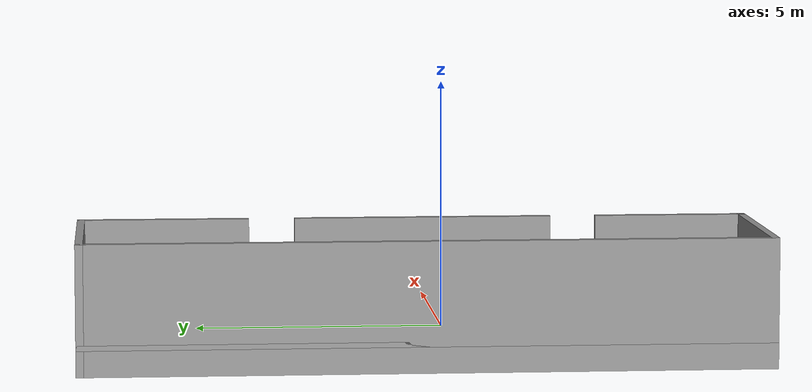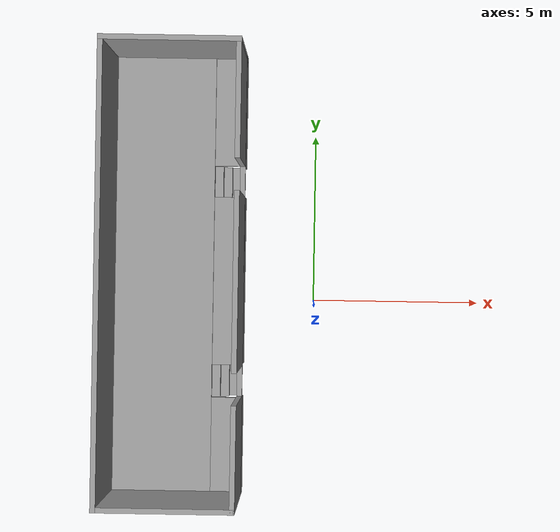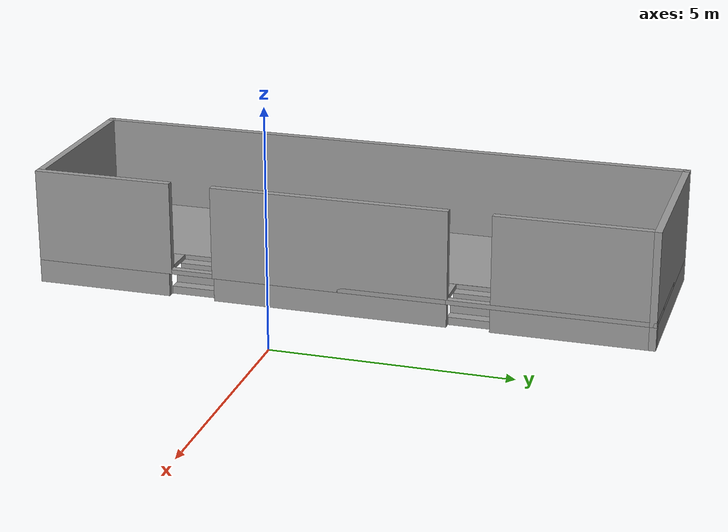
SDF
<?xml version='1.0'?>
<sdf version='1.7'>
  <model name='lab_floor2'>
    <pose>-3.0495 0.737 0 0 -0 0</pose>
    <link name='Floor_0'>
      <pose>-1.0495 0 0.5 0 -0 0</pose>
      <visual name='Floor_0_Visual_0'>
        <pose>-0.455185 0 0.05 0 -0 0</pose>
        <geometry>
          <box>
            <size>3.08963 13.25 0.1</size>
          </box>
        </geometry>
        <material>
          <script>
            <uri>file://media/materials/scripts/gazebo.material</uri>
            <name>Gazebo/Grey</name>
          </script>
          <ambient>1 1 1 1</ambient>
        </material>
        <meta>
          <layer>1</layer>
        </meta>
      </visual>
      <collision name='Floor_0_Collision_0'>
        <geometry>
          <box>
            <size>3.08963 13.25 0.1</size>
          </box>
        </geometry>
        <pose>-0.455185 0 0.05 0 -0 0</pose>
      </collision>
      <visual name='Floor_0_Visual_1'>
        <pose>1.54482 -5.14251 0.05 0 -0 0</pose>
        <geometry>
          <box>
            <size>0.91037 2.96497 0.1</size>
          </box>
        </geometry>
        <material>
          <script>
            <uri>file://media/materials/scripts/gazebo.material</uri>
            <name>Gazebo/Grey</name>
          </script>
          <ambient>1 1 1 1</ambient>
        </material>
        <meta>
          <layer>1</layer>
        </meta>
      </visual>
      <collision name='Floor_0_Collision_1'>
        <geometry>
          <box>
            <size>0.91037 2.96497 0.1</size>
          </box>
        </geometry>
        <pose>1.54482 -5.14251 0.05 0 -0 0</pose>
      </collision>
      <visual name='Floor_0_Visual_2'>
        <pose>1.92021 -0.663526 0.05 0 -0 0</pose>
        <geometry>
          <box>
            <size>0.15958 5.993 0.1</size>
          </box>
        </geometry>
        <material>
          <script>
            <uri>file://media/materials/scripts/gazebo.material</uri>
            <name>Gazebo/Grey</name>
          </script>
          <ambient>1 1 1 1</ambient>
        </material>
        <meta>
          <layer>1</layer>
        </meta>
      </visual>
      <collision name='Floor_0_Collision_2'>
        <geometry>
          <box>
            <size>0.15958 5.993 0.1</size>
          </box>
        </geometry>
        <pose>1.92021 -0.663526 0.05 0 -0 0</pose>
      </collision>
      <visual name='Floor_0_Visual_3'>
        <pose>1.09197 1.97253 0.05 0 -0 0</pose>
        <geometry>
          <box>
            <size>0.004688 9.30495 0.1</size>
          </box>
        </geometry>
        <material>
          <script>
            <uri>file://media/materials/scripts/gazebo.material</uri>
            <name>Gazebo/Grey</name>
          </script>
          <ambient>1 1 1 1</ambient>
        </material>
        <meta>
          <layer>1</layer>
        </meta>
      </visual>
      <collision name='Floor_0_Collision_3'>
        <geometry>
          <box>
            <size>0.004688 9.30495 0.1</size>
          </box>
        </geometry>
        <pose>1.09197 1.97253 0.05 0 -0 0</pose>
      </collision>
      <visual name='Floor_0_Visual_4'>
        <pose>1.46737 -0.173488 0.05 0 -0 0</pose>
        <geometry>
          <box>
            <size>0.746103 5.01292 0.1</size>
          </box>
        </geometry>
        <material>
          <script>
            <uri>file://media/materials/scripts/gazebo.material</uri>
            <name>Gazebo/Grey</name>
          </script>
          <ambient>1 1 1 1</ambient>
        </material>
        <meta>
          <layer>1</layer>
        </meta>
      </visual>
      <collision name='Floor_0_Collision_4'>
        <geometry>
          <box>
            <size>0.746103 5.01292 0.1</size>
          </box>
        </geometry>
        <pose>1.46737 -0.173488 0.05 0 -0 0</pose>
      </collision>
      <visual name='Floor_0_Visual_5'>
        <pose>1.92216 4.47899 0.05 0 -0 0</pose>
        <geometry>
          <box>
            <size>0.155682 4.29203 0.1</size>
          </box>
        </geometry>
        <material>
          <script>
            <uri>file://media/materials/scripts/gazebo.material</uri>
            <name>Gazebo/Grey</name>
          </script>
          <ambient>1 1 1 1</ambient>
        </material>
        <meta>
          <layer>1</layer>
        </meta>
      </visual>
      <collision name='Floor_0_Collision_5'>
        <geometry>
          <box>
            <size>0.155682 4.29203 0.1</size>
          </box>
        </geometry>
        <pose>1.92216 4.47899 0.05 0 -0 0</pose>
      </collision>
      <visual name='Floor_0_Visual_6'>
        <pose>1.46737 4.9448 0.05 0 -0 0</pose>
        <geometry>
          <box>
            <size>0.746103 3.3604 0.1</size>
          </box>
        </geometry>
        <material>
          <script>
            <uri>file://media/materials/scripts/gazebo.material</uri>
            <name>Gazebo/Grey</name>
          </script>
          <ambient>1 1 1 1</ambient>
        </material>
        <meta>
          <layer>1</layer>
        </meta>
      </visual>
      <collision name='Floor_0_Collision_6'>
        <geometry>
          <box>
            <size>0.746103 3.3604 0.1</size>
          </box>
        </geometry>
        <pose>1.46737 4.9448 0.05 0 -0 0</pose>
      </collision>
    </link>
    <link name='Stairs_1'>
      <visual name='Stairs_1_Visual_0'>
        <pose>0.665789 -3.16999 0.083333 0 -0 -1.5708</pose>
        <geometry>
          <box>
            <size>0.980075 0.250264 0.166667</size>
          </box>
        </geometry>
        <material>
          <script>
            <uri>file://media/materials/scripts/gazebo.material</uri>
            <name>Gazebo/Grey</name>
          </script>
          <ambient>1 1 1 1</ambient>
        </material>
        <meta>
          <layer>0</layer>
        </meta>
      </visual>
      <collision name='Stairs_1_Collision_0'>
        <geometry>
          <box>
            <size>0.980075 0.250264 0.166667</size>
          </box>
        </geometry>
        <pose>0.665789 -3.16999 0.083333 0 -0 -1.5708</pose>
      </collision>
      <visual name='Stairs_1_Visual_1'>
        <pose>0.415525 -3.16999 0.25 0 -0 -1.5708</pose>
        <geometry>
          <box>
            <size>0.980075 0.250264 0.166667</size>
          </box>
        </geometry>
        <material>
          <script>
            <uri>file://media/materials/scripts/gazebo.material</uri>
            <name>Gazebo/Grey</name>
          </script>
          <ambient>1 1 1 1</ambient>
        </material>
        <meta>
          <layer>0</layer>
        </meta>
      </visual>
      <collision name='Stairs_1_Collision_1'>
        <geometry>
          <box>
            <size>0.980075 0.250264 0.166667</size>
          </box>
        </geometry>
        <pose>0.415525 -3.16999 0.25 0 -0 -1.5708</pose>
      </collision>
      <visual name='Stairs_1_Visual_2'>
        <pose>0.165262 -3.16999 0.416667 0 -0 -1.5708</pose>
        <geometry>
          <box>
            <size>0.980075 0.250264 0.166667</size>
          </box>
        </geometry>
        <material>
          <script>
            <uri>file://media/materials/scripts/gazebo.material</uri>
            <name>Gazebo/Grey</name>
          </script>
          <ambient>1 1 1 1</ambient>
        </material>
        <meta>
          <layer>0</layer>
        </meta>
      </visual>
      <collision name='Stairs_1_Collision_2'>
        <geometry>
          <box>
            <size>0.980075 0.250264 0.166667</size>
          </box>
        </geometry>
        <pose>0.165262 -3.16999 0.416667 0 -0 -1.5708</pose>
      </collision>
    </link>
    <link name='Stairs_3'>
      <visual name='Stairs_3_Visual_0'>
        <pose>0.669818 2.79879 0.083333 0 -0 -1.5708</pose>
        <geometry>
          <box>
            <size>0.931629 0.25 0.166667</size>
          </box>
        </geometry>
        <material>
          <script>
            <uri>file://media/materials/scripts/gazebo.material</uri>
            <name>Gazebo/Grey</name>
          </script>
          <ambient>1 1 1 1</ambient>
        </material>
        <meta>
          <layer>0</layer>
        </meta>
      </visual>
      <collision name='Stairs_3_Collision_0'>
        <geometry>
          <box>
            <size>0.931629 0.25 0.166667</size>
          </box>
        </geometry>
        <pose>0.669818 2.79879 0.083333 0 -0 -1.5708</pose>
      </collision>
      <visual name='Stairs_3_Visual_1'>
        <pose>0.419818 2.79879 0.25 0 -0 -1.5708</pose>
        <geometry>
          <box>
            <size>0.931629 0.25 0.166667</size>
          </box>
        </geometry>
        <material>
          <script>
            <uri>file://media/materials/scripts/gazebo.material</uri>
            <name>Gazebo/Grey</name>
          </script>
          <ambient>1 1 1 1</ambient>
        </material>
        <meta>
          <layer>0</layer>
        </meta>
      </visual>
      <collision name='Stairs_3_Collision_1'>
        <geometry>
          <box>
            <size>0.931629 0.25 0.166667</size>
          </box>
        </geometry>
        <pose>0.419818 2.79879 0.25 0 -0 -1.5708</pose>
      </collision>
      <visual name='Stairs_3_Visual_2'>
        <pose>0.169818 2.79879 0.416667 0 -0 -1.5708</pose>
        <geometry>
          <box>
            <size>0.931629 0.25 0.166667</size>
          </box>
        </geometry>
        <material>
          <script>
            <uri>file://media/materials/scripts/gazebo.material</uri>
            <name>Gazebo/Grey</name>
          </script>
          <ambient>1 1 1 1</ambient>
        </material>
        <meta>
          <layer>0</layer>
        </meta>
      </visual>
      <collision name='Stairs_3_Collision_2'>
        <geometry>
          <box>
            <size>0.931629 0.25 0.166667</size>
          </box>
        </geometry>
        <pose>0.169818 2.79879 0.416667 0 -0 -1.5708</pose>
      </collision>
    </link>
    <link name='Wall_20'>
      <collision name='Wall_20_Collision'>
        <geometry>
          <box>
            <size>4 0.15 0.5</size>
          </box>
        </geometry>
        <pose>0 0 0.25 0 -0 0</pose>
      </collision>
      <visual name='Wall_20_Visual'>
        <pose>0 0 0.25 0 -0 0</pose>
        <geometry>
          <box>
            <size>4 0.15 0.5</size>
          </box>
        </geometry>
        <material>
          <script>
            <uri>file://media/materials/scripts/gazebo.material</uri>
            <name>Gazebo/Grey</name>
          </script>
          <ambient>1 1 1 1</ambient>
        </material>
        <meta>
          <layer>0</layer>
        </meta>
      </visual>
      <pose>-1.0495 6.55 0 0 -0 3.14159</pose>
    </link>
    <link name='Wall_21'>
      <collision name='Wall_21_Collision'>
        <geometry>
          <box>
            <size>13.25 0.15 0.5</size>
          </box>
        </geometry>
        <pose>0 0 0.25 0 -0 0</pose>
      </collision>
      <visual name='Wall_21_Visual'>
        <pose>0 0 0.25 0 -0 0</pose>
        <geometry>
          <box>
            <size>13.25 0.15 0.5</size>
          </box>
        </geometry>
        <material>
          <script>
            <uri>file://media/materials/scripts/gazebo.material</uri>
            <name>Gazebo/Grey</name>
          </script>
          <ambient>1 1 1 1</ambient>
        </material>
        <meta>
          <layer>0</layer>
        </meta>
      </visual>
      <pose>-2.9745 0 0 0 -0 -1.5708</pose>
    </link>
    <link name='Wall_22'>
      <collision name='Wall_22_Collision'>
        <geometry>
          <box>
            <size>4 0.15 0.5</size>
          </box>
        </geometry>
        <pose>0 0 0.25 0 -0 0</pose>
      </collision>
      <visual name='Wall_22_Visual'>
        <pose>0 0 0.25 0 -0 0</pose>
        <geometry>
          <box>
            <size>4 0.15 0.5</size>
          </box>
        </geometry>
        <material>
          <script>
            <uri>file://media/materials/scripts/gazebo.material</uri>
            <name>Gazebo/Grey</name>
          </script>
          <ambient>1 1 1 1</ambient>
        </material>
        <meta>
          <layer>0</layer>
        </meta>
      </visual>
      <pose>-1.0495 -6.55 0 0 -0 0</pose>
    </link>
    <link name='Wall_23'>
      <pose>0.8755 0 0 0 -0 1.5708</pose>
      <visual name='Wall_23_Visual_0'>
        <pose>-5.14626 0 0.25 0 -0 0</pose>
        <geometry>
          <box>
            <size>2.95749 0.15 0.5</size>
          </box>
        </geometry>
        <material>
          <script>
            <uri>file://media/materials/scripts/gazebo.material</uri>
            <name>Gazebo/Grey</name>
          </script>
          <ambient>1 1 1 1</ambient>
        </material>
        <meta>
          <layer>0</layer>
        </meta>
      </visual>
      <collision name='Wall_23_Collision_0'>
        <geometry>
          <box>
            <size>2.95749 0.15 0.5</size>
          </box>
        </geometry>
        <pose>-5.14626 0 0.25 0 -0 0</pose>
      </collision>
      <visual name='Wall_23_Visual_1'>
        <pose>-0.157845 0 0.25 0 -0 0</pose>
        <geometry>
          <box>
            <size>5.01934 0.15 0.5</size>
          </box>
        </geometry>
        <material>
          <script>
            <uri>file://media/materials/scripts/gazebo.material</uri>
            <name>Gazebo/Grey</name>
          </script>
          <ambient>1 1 1 1</ambient>
        </material>
        <meta>
          <layer>0</layer>
        </meta>
      </visual>
      <collision name='Wall_23_Collision_1'>
        <geometry>
          <box>
            <size>5.01934 0.15 0.5</size>
          </box>
        </geometry>
        <pose>-0.157845 0 0.25 0 -0 0</pose>
      </collision>
      <visual name='Wall_23_Visual_2'>
        <pose>4.93841 0 0.25 0 -0 0</pose>
        <geometry>
          <box>
            <size>3.37318 0.15 0.5</size>
          </box>
        </geometry>
        <material>
          <script>
            <uri>file://media/materials/scripts/gazebo.material</uri>
            <name>Gazebo/Grey</name>
          </script>
          <ambient>1 1 1 1</ambient>
        </material>
        <meta>
          <layer>0</layer>
        </meta>
      </visual>
      <collision name='Wall_23_Collision_2'>
        <geometry>
          <box>
            <size>3.37318 0.15 0.5</size>
          </box>
        </geometry>
        <pose>4.93841 0 0.25 0 -0 0</pose>
      </collision>
    </link>
    <link name='Wall_25'>
      <collision name='Wall_25_Collision'>
        <geometry>
          <box>
            <size>4 0.15 2</size>
          </box>
        </geometry>
        <pose>0 0 1 0 -0 0</pose>
      </collision>
      <visual name='Wall_25_Visual'>
        <pose>0 0 1 0 -0 0</pose>
        <geometry>
          <box>
            <size>4 0.15 2</size>
          </box>
        </geometry>
        <material>
          <script>
            <uri>file://media/materials/scripts/gazebo.material</uri>
            <name>Gazebo/Grey</name>
          </script>
          <ambient>1 1 1 1</ambient>
        </material>
        <meta>
          <layer>1</layer>
        </meta>
      </visual>
      <pose>-1.0495 6.55 0.5 0 -0 3.14159</pose>
    </link>
    <link name='Wall_26'>
      <collision name='Wall_26_Collision'>
        <geometry>
          <box>
            <size>13.25 0.15 2</size>
          </box>
        </geometry>
        <pose>0 0 1 0 -0 0</pose>
      </collision>
      <visual name='Wall_26_Visual'>
        <pose>0 0 1 0 -0 0</pose>
        <geometry>
          <box>
            <size>13.25 0.15 2</size>
          </box>
        </geometry>
        <material>
          <script>
            <uri>file://media/materials/scripts/gazebo.material</uri>
            <name>Gazebo/Grey</name>
          </script>
          <ambient>1 1 1 1</ambient>
        </material>
        <meta>
          <layer>1</layer>
        </meta>
      </visual>
      <pose>-2.9745 0 0.5 0 -0 -1.5708</pose>
    </link>
    <link name='Wall_27'>
      <collision name='Wall_27_Collision'>
        <geometry>
          <box>
            <size>4 0.15 2</size>
          </box>
        </geometry>
        <pose>0 0 1 0 -0 0</pose>
      </collision>
      <visual name='Wall_27_Visual'>
        <pose>0 0 1 0 -0 0</pose>
        <geometry>
          <box>
            <size>4 0.15 2</size>
          </box>
        </geometry>
        <material>
          <script>
            <uri>file://media/materials/scripts/gazebo.material</uri>
            <name>Gazebo/Grey</name>
          </script>
          <ambient>1 1 1 1</ambient>
        </material>
        <meta>
          <layer>1</layer>
        </meta>
      </visual>
      <pose>-1.0495 -6.55 0.5 0 -0 0</pose>
    </link>
    <link name='Wall_28'>
      <pose>0.8755 0 0.5 0 -0 1.5708</pose>
      <visual name='Wall_28_Visual_0'>
        <pose>-5.11716 0 1 0 -0 0</pose>
        <geometry>
          <box>
            <size>3.01569 0.15 2</size>
          </box>
        </geometry>
        <material>
          <script>
            <uri>file://media/materials/scripts/gazebo.material</uri>
            <name>Gazebo/Grey</name>
          </script>
          <ambient>1 1 1 1</ambient>
        </material>
        <meta>
          <layer>1</layer>
        </meta>
      </visual>
      <collision name='Wall_28_Collision_0'>
        <geometry>
          <box>
            <size>3.01569 0.15 2</size>
          </box>
        </geometry>
        <pose>-5.11716 0 1 0 -0 0</pose>
      </collision>
      <visual name='Wall_28_Visual_1'>
        <pose>-0.175902 0 1 0 -0 0</pose>
        <geometry>
          <box>
            <size>5.06682 0.15 2</size>
          </box>
        </geometry>
        <material>
          <script>
            <uri>file://media/materials/scripts/gazebo.material</uri>
            <name>Gazebo/Grey</name>
          </script>
          <ambient>1 1 1 1</ambient>
        </material>
        <meta>
          <layer>1</layer>
        </meta>
      </visual>
      <collision name='Wall_28_Collision_1'>
        <geometry>
          <box>
            <size>5.06682 0.15 2</size>
          </box>
        </geometry>
        <pose>-0.175902 0 1 0 -0 0</pose>
      </collision>
      <visual name='Wall_28_Visual_2'>
        <pose>4.94125 0 1 0 -0 0</pose>
        <geometry>
          <box>
            <size>3.36749 0.15 2</size>
          </box>
        </geometry>
        <material>
          <script>
            <uri>file://media/materials/scripts/gazebo.material</uri>
            <name>Gazebo/Grey</name>
          </script>
          <ambient>1 1 1 1</ambient>
        </material>
        <meta>
          <layer>1</layer>
        </meta>
      </visual>
      <collision name='Wall_28_Collision_2'>
        <geometry>
          <box>
            <size>3.36749 0.15 2</size>
          </box>
        </geometry>
        <pose>4.94125 0 1 0 -0 0</pose>
      </collision>
    </link>
    <static>1</static>
  </model>
</sdf>
